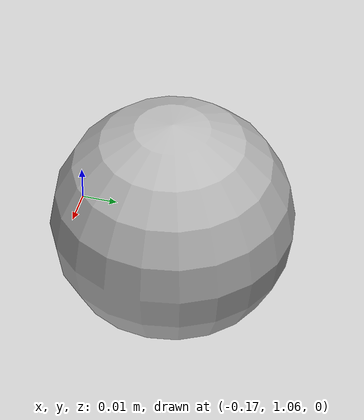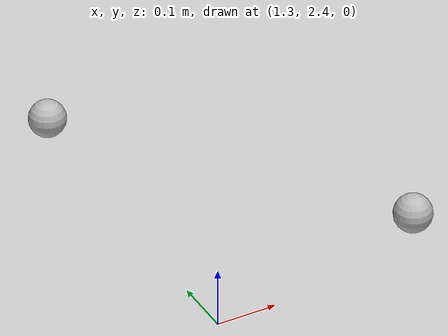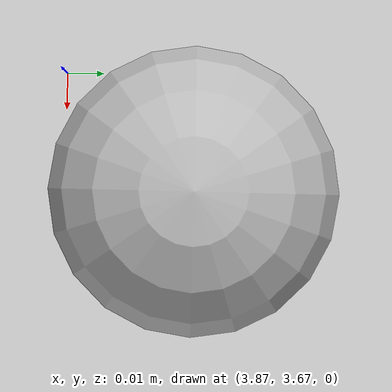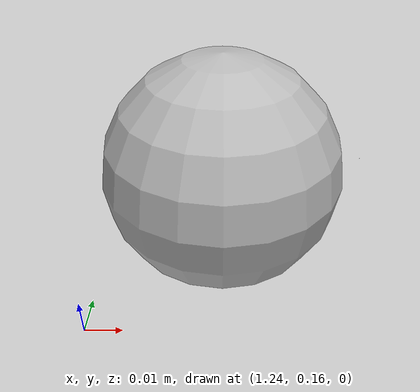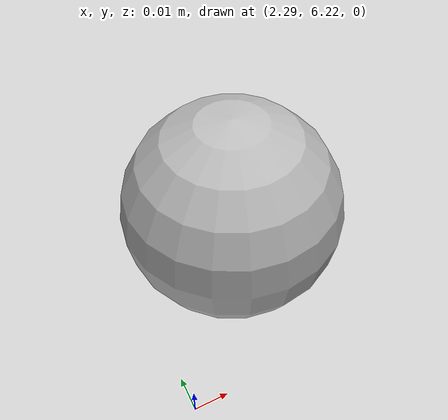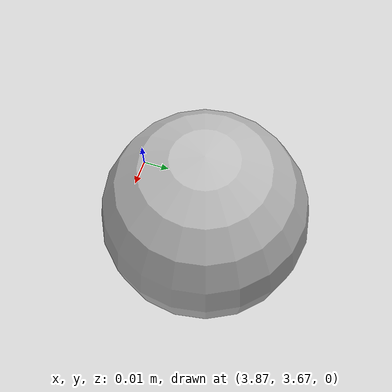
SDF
<sdf version="1.6">
 <world name="default">
  <model name="tennis_court">
   <static>1</static>
   <link name="link">
    <collision name="collision">
     <geometry><plane><normal>0 0 1</normal><size>11 23</size></plane></geometry>
     <surface><friction><ode><mu>100</mu><mu2>50</mu2></ode></friction></surface>
    </collision>
    <visual name="visual">
     <cast_shadows>0</cast_shadows>
     <geometry><plane><normal>0 0 1</normal><size>11 23</size></plane></geometry>
     <material>
      <script>
       <uri>model://tennis_court/materials/scripts</uri>
       <uri>model://tennis_court/materials/textures/</uri>
       <name>TennisCourt/Image</name>
      </script>
     </material>
    </visual>
   </link>
  </model>
  <light name="sun" type="directional">
   <pose>0 0 10 0 -0 0</pose>
   <diffuse>0.8 0.8 0.8 1</diffuse>
   <specular>0.2 0.2 0.2 1</specular>
   <attenuation>
    <range>1000</range>
    <constant>0.9</constant>
    <linear>0.01</linear>
    <quadratic>0.001</quadratic>
   </attenuation>
   <direction>-0.5 0.1 -0.9</direction>
  </light>
  <gravity>0 0 -9.8</gravity>
  <magnetic_field>6e-06 2.3e-05 -4.2e-05</magnetic_field>
  <atmosphere type="adiabatic"/>
  <physics name="default_physics" default="0" type="ode">
   <max_step_size>0.001</max_step_size>
   <real_time_factor>1</real_time_factor>
   <real_time_update_rate>1000</real_time_update_rate>
  </physics>
  <scene><ambient>0.4 0.4 0.4 1</ambient><background>0.7 0.7 0.7 1</background><shadows>1</shadows></scene>
  <audio><device>default</device></audio>
  <spherical_coordinates>
   <surface_model>EARTH_WGS84</surface_model>
   <latitude_deg>0</latitude_deg>
   <longitude_deg>0</longitude_deg>
   <elevation>0</elevation>
   <heading_deg>0</heading_deg>
  </spherical_coordinates>
  <model name="tennis_ball">
   <static>1</static>
   <link name="link">
    <collision name="collision">
     <geometry><sphere><radius>0.0325</radius></sphere></geometry>
     <surface><friction><ode><mu>100</mu><mu2>50</mu2></ode></friction></surface>
    </collision>
    <visual name="visual">
     <geometry><sphere><radius>0.0325</radius></sphere></geometry>
     <material>
      <script>
       <uri>model://tennis_ball/materials/scripts</uri>
       <uri>model://tennis_ball/materials/textures/</uri>
       <name>TennisBall/Image</name>
      </script>
     </material>
    </visual>
   </link>
   <pose>-0.134954 1.09575 0.030909 0 -0 0</pose>
  </model>
  <model name="tennis_ball_0">
   <static>1</static>
   <link name="link">
    <collision name="collision">
     <geometry><sphere><radius>0.0325</radius></sphere></geometry>
     <surface><friction><ode><mu>100</mu><mu2>50</mu2></ode></friction></surface>
    </collision>
    <visual name="visual">
     <geometry><sphere><radius>0.0325</radius></sphere></geometry>
     <material>
      <script>
       <uri>model://tennis_ball/materials/scripts</uri>
       <uri>model://tennis_ball/materials/textures/</uri>
       <name>TennisBall/Image</name>
      </script>
     </material>
    </visual>
   </link>
   <pose>1.27607 0.188341 0.03267 0 -0 0</pose>
  </model>
  <model name="tennis_ball_1">
   <static>1</static>
   <link name="link">
    <collision name="collision">
     <geometry><sphere><radius>0.0325</radius></sphere></geometry>
     <surface><friction><ode><mu>100</mu><mu2>50</mu2></ode></friction></surface>
    </collision>
    <visual name="visual">
     <geometry><sphere><radius>0.0325</radius></sphere></geometry>
     <material>
      <script>
       <uri>model://tennis_ball/materials/scripts</uri>
       <uri>model://tennis_ball/materials/textures/</uri>
       <name>TennisBall/Image</name>
      </script>
     </material>
    </visual>
   </link>
   <pose>1.69301 2.4724 0.030366 0 -0 0</pose>
  </model>
  <model name="tennis_ball_2">
   <static>1</static>
   <link name="link">
    <collision name="collision">
     <geometry><sphere><radius>0.0325</radius></sphere></geometry>
     <surface><friction><ode><mu>100</mu><mu2>50</mu2></ode></friction></surface>
    </collision>
    <visual name="visual">
     <geometry><sphere><radius>0.0325</radius></sphere></geometry>
     <material>
      <script>
       <uri>model://tennis_ball/materials/scripts</uri>
       <uri>model://tennis_ball/materials/textures/</uri>
       <name>TennisBall/Image</name>
      </script>
     </material>
    </visual>
   </link>
   <pose>1.30326 2.99564 0.031917 0 -0 0</pose>
  </model>
  <model name="tennis_ball_3">
   <static>1</static>
   <link name="link">
    <collision name="collision">
     <geometry><sphere><radius>0.0325</radius></sphere></geometry>
     <surface><friction><ode><mu>100</mu><mu2>50</mu2></ode></friction></surface>
    </collision>
    <visual name="visual">
     <geometry><sphere><radius>0.0325</radius></sphere></geometry>
     <material>
      <script>
       <uri>model://tennis_ball/materials/scripts</uri>
       <uri>model://tennis_ball/materials/textures/</uri>
       <name>TennisBall/Image</name>
      </script>
     </material>
    </visual>
   </link>
   <pose>3.90193 3.70524 0.033496 0 -0 0</pose>
  </model>
  <model name="tennis_ball_4">
   <static>1</static>
   <link name="link">
    <collision name="collision">
     <geometry><sphere><radius>0.0325</radius></sphere></geometry>
     <surface><friction><ode><mu>100</mu><mu2>50</mu2></ode></friction></surface>
    </collision>
    <visual name="visual">
     <geometry><sphere><radius>0.0325</radius></sphere></geometry>
     <material>
      <script>
       <uri>model://tennis_ball/materials/scripts</uri>
       <uri>model://tennis_ball/materials/textures/</uri>
       <name>TennisBall/Image</name>
      </script>
     </material>
    </visual>
   </link>
   <pose>2.32041 6.25697 0.033648 0 -0 0</pose>
  </model>
 </world>
</sdf>
